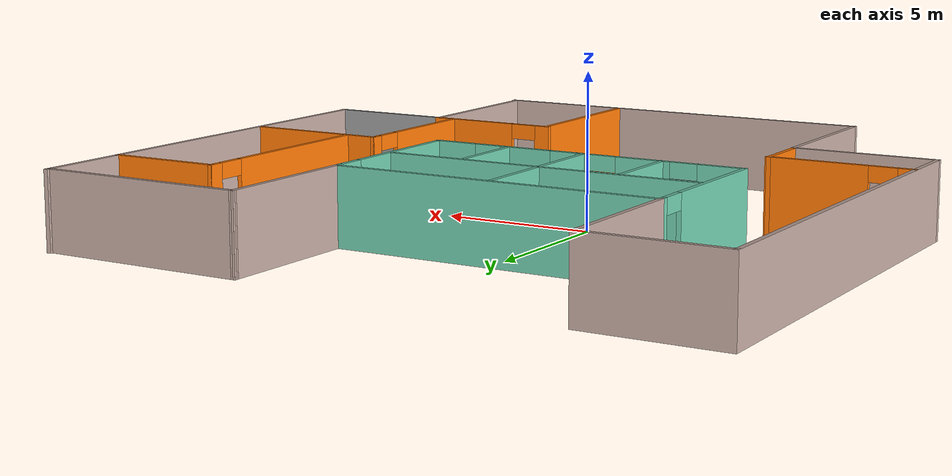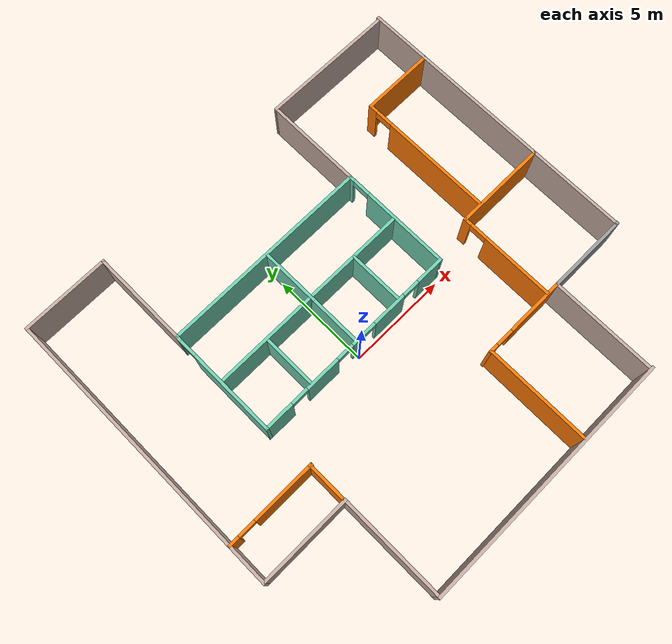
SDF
<?xml version='1.0'?>
<sdf version='1.6'>
  <model name='Building'>
    <pose frame=''>1.22152 0.635857 0 0 -0 0</pose>
    <link name='Wall_35'>
      <collision name='Wall_35_Collision'>
        <geometry>
          <box>
            <size>4.5 0.15 2.5</size>
          </box>
        </geometry>
        <pose frame=''>0 0 1.25 0 -0 0</pose>
      </collision>
      <visual name='Wall_35_Visual'>
        <pose frame=''>0 0 1.25 0 -0 0</pose>
        <geometry>
          <box>
            <size>4.5 0.15 2.5</size>
          </box>
        </geometry>
        <material>
          <script>
            <uri>file://media/materials/scripts/gazebo.material</uri>
            <name>Gazebo/Grey</name>
          </script>
          <ambient>0.760784 0.662745 0.627451 1</ambient>
        </material>
        <meta>
          <layer>0</layer>
        </meta>
      </visual>
      <pose frame=''>-8.725 10.0804 0 0 -0 0</pose>
    </link>
    <link name='Wall_36'>
      <collision name='Wall_36_Collision'>
        <geometry>
          <box>
            <size>5 0.15 2.5</size>
          </box>
        </geometry>
        <pose frame=''>0 0 1.25 0 -0 0</pose>
      </collision>
      <visual name='Wall_36_Visual'>
        <pose frame=''>0 0 1.25 0 -0 0</pose>
        <geometry>
          <box>
            <size>5 0.15 2.5</size>
          </box>
        </geometry>
        <material>
          <script>
            <uri>file://media/materials/scripts/gazebo.material</uri>
            <name>Gazebo/Grey</name>
          </script>
          <ambient>0.760784 0.662745 0.627451 1</ambient>
        </material>
        <meta>
          <layer>0</layer>
        </meta>
      </visual>
      <pose frame=''>-6.55 7.65538 0 0 0 -1.5708</pose>
    </link>
    <link name='Wall_37'>
      <collision name='Wall_37_Collision'>
        <geometry>
          <box>
            <size>10.75 0.15 2.5</size>
          </box>
        </geometry>
        <pose frame=''>0 0 1.25 0 -0 0</pose>
      </collision>
      <visual name='Wall_37_Visual'>
        <pose frame=''>0 0 1.25 0 -0 0</pose>
        <geometry>
          <box>
            <size>10.75 0.15 2.5</size>
          </box>
        </geometry>
        <material>
          <script>
            <uri>file://media/materials/scripts/gazebo.material</uri>
            <name>Gazebo/Grey</name>
          </script>
          <ambient>0.435294 0.796078 0.67451 1</ambient>
        </material>
        <meta>
          <layer>0</layer>
        </meta>
      </visual>
      <pose frame=''>-1.25 5.23038 0 0 -0 0</pose>
    </link>
    <link name='Wall_38'>
      <collision name='Wall_38_Collision'>
        <geometry>
          <box>
            <size>5 0.15 2.5</size>
          </box>
        </geometry>
        <pose frame=''>0 0 1.25 0 -0 0</pose>
      </collision>
      <visual name='Wall_38_Visual'>
        <pose frame=''>0 0 1.25 0 -0 0</pose>
        <geometry>
          <box>
            <size>5 0.15 2.5</size>
          </box>
        </geometry>
        <material>
          <script>
            <uri>file://media/materials/scripts/gazebo.material</uri>
            <name>Gazebo/Grey</name>
          </script>
          <ambient>0.760784 0.662745 0.627451 1</ambient>
        </material>
        <meta>
          <layer>0</layer>
        </meta>
      </visual>
      <pose frame=''>4.05 7.65538 0 0 -0 1.5708</pose>
    </link>
    <link name='Wall_39'>
      <collision name='Wall_39_Collision'>
        <geometry>
          <box>
            <size>6.98446 0.15 2.5</size>
          </box>
        </geometry>
        <pose frame=''>0 0 1.25 0 -0 0</pose>
      </collision>
      <visual name='Wall_39_Visual'>
        <pose frame=''>0 0 1.25 0 -0 0</pose>
        <geometry>
          <box>
            <size>6.98446 0.15 2.5</size>
          </box>
        </geometry>
        <material>
          <script>
            <uri>file://media/materials/scripts/gazebo.material</uri>
            <name>Gazebo/Grey</name>
          </script>
          <ambient>0.760784 0.662745 0.627451 1</ambient>
        </material>
        <meta>
          <layer>0</layer>
        </meta>
      </visual>
      <pose frame=''>7.46718 10.0598 0 0 0 -0.006031</pose>
    </link>
    <link name='Wall_40'>
      <collision name='Wall_40_Collision'>
        <geometry>
          <box>
            <size>15 0.15 2.5</size>
          </box>
        </geometry>
        <pose frame=''>0 0 1.25 0 -0 0</pose>
      </collision>
      <visual name='Wall_40_Visual'>
        <pose frame=''>0 0 1.25 0 -0 0</pose>
        <geometry>
          <box>
            <size>15 0.15 2.5</size>
          </box>
        </geometry>
        <material>
          <script>
            <uri>file://media/materials/scripts/gazebo.material</uri>
            <name>Gazebo/Grey</name>
          </script>
          <ambient>0.760784 0.662745 0.627451 1</ambient>
        </material>
        <meta>
          <layer>0</layer>
        </meta>
      </visual>
      <pose frame=''>10.8843 2.69462 0 0 0 -1.5708</pose>
    </link>
    <link name='Wall_42'>
      <collision name='Wall_42_Collision'>
        <geometry>
          <box>
            <size>5.5 0.15 2.5</size>
          </box>
        </geometry>
        <pose frame=''>0 0 1.25 0 -0 0</pose>
      </collision>
      <visual name='Wall_42_Visual'>
        <pose frame=''>0 0 1.25 0 -0 0</pose>
        <geometry>
          <box>
            <size>5.5 0.15 2.5</size>
          </box>
        </geometry>
        <material>
          <script>
            <uri>file://media/materials/scripts/gazebo.material</uri>
            <name>Gazebo/Grey</name>
          </script>
          <ambient>0.760784 0.662745 0.627451 1</ambient>
        </material>
        <meta>
          <layer>0</layer>
        </meta>
      </visual>
      <pose frame=''>6.84725 -7.44462 0 0 0 -1.5708</pose>
    </link>
    <link name='Wall_43'>
      <collision name='Wall_43_Collision'>
        <geometry>
          <box>
            <size>13.368 0.15 2.5</size>
          </box>
        </geometry>
        <pose frame=''>0 0 1.25 0 -0 0</pose>
      </collision>
      <visual name='Wall_43_Visual'>
        <pose frame=''>0 0 1.25 0 -0 0</pose>
        <geometry>
          <box>
            <size>13.368 0.15 2.5</size>
          </box>
        </geometry>
        <material>
          <script>
            <uri>file://media/materials/scripts/gazebo.material</uri>
            <name>Gazebo/Grey</name>
          </script>
          <ambient>0.760784 0.662745 0.627451 1</ambient>
        </material>
        <meta>
          <layer>0</layer>
        </meta>
      </visual>
      <pose frame=''>0.309006 -10.1196 0 0 -0 3.14159</pose>
    </link>
    <link name='Wall_44'>
      <collision name='Wall_44_Collision'>
        <geometry>
          <box>
            <size>5.5 0.15 2.5</size>
          </box>
        </geometry>
        <pose frame=''>0 0 1.25 0 -0 0</pose>
      </collision>
      <visual name='Wall_44_Visual'>
        <pose frame=''>0 0 1.25 0 -0 0</pose>
        <geometry>
          <box>
            <size>5.5 0.15 2.5</size>
          </box>
        </geometry>
        <material>
          <script>
            <uri>file://media/materials/scripts/gazebo.material</uri>
            <name>Gazebo/Grey</name>
          </script>
          <ambient>0.760784 0.662745 0.627451 1</ambient>
        </material>
        <meta>
          <layer>0</layer>
        </meta>
      </visual>
      <pose frame=''>-6.3 -7.44462 0 0 -0 1.5708</pose>
    </link>
    <link name='Wall_45'>
      <collision name='Wall_45_Collision'>
        <geometry>
          <box>
            <size>4.75 0.15 2.5</size>
          </box>
        </geometry>
        <pose frame=''>0 0 1.25 0 -0 0</pose>
      </collision>
      <visual name='Wall_45_Visual'>
        <pose frame=''>0 0 1.25 0 -0 0</pose>
        <geometry>
          <box>
            <size>4.75 0.15 2.5</size>
          </box>
        </geometry>
        <material>
          <script>
            <uri>file://media/materials/scripts/gazebo.material</uri>
            <name>Gazebo/Grey</name>
          </script>
          <ambient>0.760784 0.662745 0.627451 1</ambient>
        </material>
        <meta>
          <layer>0</layer>
        </meta>
      </visual>
      <pose frame=''>-8.6 -4.76962 0 0 -0 3.14159</pose>
    </link>
    <link name='Wall_46'>
      <collision name='Wall_46_Collision'>
        <geometry>
          <box>
            <size>15 0.15 2.5</size>
          </box>
        </geometry>
        <pose frame=''>0 0 1.25 0 -0 0</pose>
      </collision>
      <visual name='Wall_46_Visual'>
        <pose frame=''>0 0 1.25 0 -0 0</pose>
        <geometry>
          <box>
            <size>15 0.15 2.5</size>
          </box>
        </geometry>
        <material>
          <script>
            <uri>file://media/materials/scripts/gazebo.material</uri>
            <name>Gazebo/Grey</name>
          </script>
          <ambient>0.760784 0.662745 0.627451 1</ambient>
        </material>
        <meta>
          <layer>0</layer>
        </meta>
      </visual>
      <pose frame=''>-10.9 2.65538 0 0 -0 1.5708</pose>
    </link>
    <link name='Wall_48'>
      <pose frame=''>-6.55 2.43038 0 0 0 -1.5708</pose>
      <visual name='Wall_48_Visual_0'>
        <pose frame=''>-2.70872 0 1.25 0 -0 0</pose>
        <geometry>
          <box>
            <size>0.332563 0.15 2.5</size>
          </box>
        </geometry>
        <material>
          <script>
            <uri>file://media/materials/scripts/gazebo.material</uri>
            <name>Gazebo/Grey</name>
          </script>
          <ambient>0.435294 0.796078 0.67451 1</ambient>
        </material>
        <meta>
          <layer>0</layer>
        </meta>
      </visual>
      <collision name='Wall_48_Collision_0'>
        <geometry>
          <box>
            <size>0.332563 0.15 2.5</size>
          </box>
        </geometry>
        <pose frame=''>-2.70872 0 1.25 0 -0 0</pose>
      </collision>
      <visual name='Wall_48_Visual_1'>
        <pose frame=''>0.616281 0 1.25 0 -0 0</pose>
        <geometry>
          <box>
            <size>4.51744 0.15 2.5</size>
          </box>
        </geometry>
        <material>
          <script>
            <uri>file://media/materials/scripts/gazebo.material</uri>
            <name>Gazebo/Grey</name>
          </script>
          <ambient>0.435294 0.796078 0.67451 1</ambient>
        </material>
        <meta>
          <layer>0</layer>
        </meta>
      </visual>
      <collision name='Wall_48_Collision_1'>
        <geometry>
          <box>
            <size>4.51744 0.15 2.5</size>
          </box>
        </geometry>
        <pose frame=''>0.616281 0 1.25 0 -0 0</pose>
      </collision>
      <visual name='Wall_48_Visual_2'>
        <pose frame=''>-2.09244 0 2.25 0 -0 0</pose>
        <geometry>
          <box>
            <size>0.9 0.15 0.5</size>
          </box>
        </geometry>
        <material>
          <script>
            <uri>file://media/materials/scripts/gazebo.material</uri>
            <name>Gazebo/Grey</name>
          </script>
          <ambient>0.435294 0.796078 0.67451 1</ambient>
        </material>
        <meta>
          <layer>0</layer>
        </meta>
      </visual>
      <collision name='Wall_48_Collision_2'>
        <geometry>
          <box>
            <size>0.9 0.15 0.5</size>
          </box>
        </geometry>
        <pose frame=''>-2.09244 0 2.25 0 -0 0</pose>
      </collision>
    </link>
    <link name='Wall_49'>
      <pose frame=''>-1.25 -0.36962 0 0 -0 0</pose>
      <visual name='Wall_49_Visual_0'>
        <pose frame=''>-4.59292 0 1.25 0 -0 0</pose>
        <geometry>
          <box>
            <size>1.56416 0.15 2.5</size>
          </box>
        </geometry>
        <material>
          <script>
            <uri>file://media/materials/scripts/gazebo.material</uri>
            <name>Gazebo/Grey</name>
          </script>
          <ambient>0.435294 0.796078 0.67451 1</ambient>
        </material>
        <meta>
          <layer>0</layer>
        </meta>
      </visual>
      <collision name='Wall_49_Collision_0'>
        <geometry>
          <box>
            <size>1.56416 0.15 2.5</size>
          </box>
        </geometry>
        <pose frame=''>-4.59292 0 1.25 0 -0 0</pose>
      </collision>
      <visual name='Wall_49_Visual_1'>
        <pose frame=''>-2.00006 0 1.25 0 -0 0</pose>
        <geometry>
          <box>
            <size>1.82155 0.15 2.5</size>
          </box>
        </geometry>
        <material>
          <script>
            <uri>file://media/materials/scripts/gazebo.material</uri>
            <name>Gazebo/Grey</name>
          </script>
          <ambient>0.435294 0.796078 0.67451 1</ambient>
        </material>
        <meta>
          <layer>0</layer>
        </meta>
      </visual>
      <collision name='Wall_49_Collision_1'>
        <geometry>
          <box>
            <size>1.82155 0.15 2.5</size>
          </box>
        </geometry>
        <pose frame=''>-2.00006 0 1.25 0 -0 0</pose>
      </collision>
      <visual name='Wall_49_Visual_2'>
        <pose frame=''>0.046812 0 1.25 0 -0 0</pose>
        <geometry>
          <box>
            <size>0.472208 0.15 2.5</size>
          </box>
        </geometry>
        <material>
          <script>
            <uri>file://media/materials/scripts/gazebo.material</uri>
            <name>Gazebo/Grey</name>
          </script>
          <ambient>0.435294 0.796078 0.67451 1</ambient>
        </material>
        <meta>
          <layer>0</layer>
        </meta>
      </visual>
      <collision name='Wall_49_Collision_2'>
        <geometry>
          <box>
            <size>0.472208 0.15 2.5</size>
          </box>
        </geometry>
        <pose frame=''>0.046812 0 1.25 0 -0 0</pose>
      </collision>
      <visual name='Wall_49_Visual_3'>
        <pose frame=''>2.08225 0 1.25 0 -0 0</pose>
        <geometry>
          <box>
            <size>1.79868 0.15 2.5</size>
          </box>
        </geometry>
        <material>
          <script>
            <uri>file://media/materials/scripts/gazebo.material</uri>
            <name>Gazebo/Grey</name>
          </script>
          <ambient>0.435294 0.796078 0.67451 1</ambient>
        </material>
        <meta>
          <layer>0</layer>
        </meta>
      </visual>
      <collision name='Wall_49_Collision_3'>
        <geometry>
          <box>
            <size>1.79868 0.15 2.5</size>
          </box>
        </geometry>
        <pose frame=''>2.08225 0 1.25 0 -0 0</pose>
      </collision>
      <visual name='Wall_49_Visual_4'>
        <pose frame=''>4.6283 0 1.25 0 -0 0</pose>
        <geometry>
          <box>
            <size>1.49341 0.15 2.5</size>
          </box>
        </geometry>
        <material>
          <script>
            <uri>file://media/materials/scripts/gazebo.material</uri>
            <name>Gazebo/Grey</name>
          </script>
          <ambient>0.435294 0.796078 0.67451 1</ambient>
        </material>
        <meta>
          <layer>0</layer>
        </meta>
      </visual>
      <collision name='Wall_49_Collision_4'>
        <geometry>
          <box>
            <size>1.49341 0.15 2.5</size>
          </box>
        </geometry>
        <pose frame=''>4.6283 0 1.25 0 -0 0</pose>
      </collision>
      <visual name='Wall_49_Visual_5'>
        <pose frame=''>-3.36084 0 2.25 0 -0 0</pose>
        <geometry>
          <box>
            <size>0.9 0.15 0.5</size>
          </box>
        </geometry>
        <material>
          <script>
            <uri>file://media/materials/scripts/gazebo.material</uri>
            <name>Gazebo/Grey</name>
          </script>
          <ambient>0.435294 0.796078 0.67451 1</ambient>
        </material>
        <meta>
          <layer>0</layer>
        </meta>
      </visual>
      <collision name='Wall_49_Collision_5'>
        <geometry>
          <box>
            <size>0.9 0.15 0.5</size>
          </box>
        </geometry>
        <pose frame=''>-3.36084 0 2.25 0 -0 0</pose>
      </collision>
      <visual name='Wall_49_Visual_6'>
        <pose frame=''>-0.639292 0 2.25 0 -0 0</pose>
        <geometry>
          <box>
            <size>0.9 0.15 0.5</size>
          </box>
        </geometry>
        <material>
          <script>
            <uri>file://media/materials/scripts/gazebo.material</uri>
            <name>Gazebo/Grey</name>
          </script>
          <ambient>0.435294 0.796078 0.67451 1</ambient>
        </material>
        <meta>
          <layer>0</layer>
        </meta>
      </visual>
      <collision name='Wall_49_Collision_6'>
        <geometry>
          <box>
            <size>0.9 0.15 0.5</size>
          </box>
        </geometry>
        <pose frame=''>-0.639292 0 2.25 0 -0 0</pose>
      </collision>
      <visual name='Wall_49_Visual_7'>
        <pose frame=''>0.732916 0 2.25 0 -0 0</pose>
        <geometry>
          <box>
            <size>0.9 0.15 0.5</size>
          </box>
        </geometry>
        <material>
          <script>
            <uri>file://media/materials/scripts/gazebo.material</uri>
            <name>Gazebo/Grey</name>
          </script>
          <ambient>0.435294 0.796078 0.67451 1</ambient>
        </material>
        <meta>
          <layer>0</layer>
        </meta>
      </visual>
      <collision name='Wall_49_Collision_7'>
        <geometry>
          <box>
            <size>0.9 0.15 0.5</size>
          </box>
        </geometry>
        <pose frame=''>0.732916 0 2.25 0 -0 0</pose>
      </collision>
      <visual name='Wall_49_Visual_8'>
        <pose frame=''>3.43159 0 2.25 0 -0 0</pose>
        <geometry>
          <box>
            <size>0.9 0.15 0.5</size>
          </box>
        </geometry>
        <material>
          <script>
            <uri>file://media/materials/scripts/gazebo.material</uri>
            <name>Gazebo/Grey</name>
          </script>
          <ambient>0.435294 0.796078 0.67451 1</ambient>
        </material>
        <meta>
          <layer>0</layer>
        </meta>
      </visual>
      <collision name='Wall_49_Collision_8'>
        <geometry>
          <box>
            <size>0.9 0.15 0.5</size>
          </box>
        </geometry>
        <pose frame=''>3.43159 0 2.25 0 -0 0</pose>
      </collision>
    </link>
    <link name='Wall_50'>
      <pose frame=''>4.05 2.43038 0 0 -0 1.5708</pose>
      <visual name='Wall_50_Visual_0'>
        <pose frame=''>-0.616281 0 1.25 0 -0 0</pose>
        <geometry>
          <box>
            <size>4.51744 0.15 2.5</size>
          </box>
        </geometry>
        <material>
          <script>
            <uri>file://media/materials/scripts/gazebo.material</uri>
            <name>Gazebo/Grey</name>
          </script>
          <ambient>0.435294 0.796078 0.67451 1</ambient>
        </material>
        <meta>
          <layer>0</layer>
        </meta>
      </visual>
      <collision name='Wall_50_Collision_0'>
        <geometry>
          <box>
            <size>4.51744 0.15 2.5</size>
          </box>
        </geometry>
        <pose frame=''>-0.616281 0 1.25 0 -0 0</pose>
      </collision>
      <visual name='Wall_50_Visual_1'>
        <pose frame=''>2.70872 0 1.25 0 -0 0</pose>
        <geometry>
          <box>
            <size>0.332563 0.15 2.5</size>
          </box>
        </geometry>
        <material>
          <script>
            <uri>file://media/materials/scripts/gazebo.material</uri>
            <name>Gazebo/Grey</name>
          </script>
          <ambient>0.435294 0.796078 0.67451 1</ambient>
        </material>
        <meta>
          <layer>0</layer>
        </meta>
      </visual>
      <collision name='Wall_50_Collision_1'>
        <geometry>
          <box>
            <size>0.332563 0.15 2.5</size>
          </box>
        </geometry>
        <pose frame=''>2.70872 0 1.25 0 -0 0</pose>
      </collision>
      <visual name='Wall_50_Visual_2'>
        <pose frame=''>2.09244 0 2.25 0 -0 0</pose>
        <geometry>
          <box>
            <size>0.9 0.15 0.5</size>
          </box>
        </geometry>
        <material>
          <script>
            <uri>file://media/materials/scripts/gazebo.material</uri>
            <name>Gazebo/Grey</name>
          </script>
          <ambient>0.435294 0.796078 0.67451 1</ambient>
        </material>
        <meta>
          <layer>0</layer>
        </meta>
      </visual>
      <collision name='Wall_50_Collision_2'>
        <geometry>
          <box>
            <size>0.9 0.15 0.5</size>
          </box>
        </geometry>
        <pose frame=''>2.09244 0 2.25 0 -0 0</pose>
      </collision>
    </link>
    <link name='Wall_52'>
      <collision name='Wall_52_Collision'>
        <geometry>
          <box>
            <size>10.5 0.15 2.5</size>
          </box>
        </geometry>
        <pose frame=''>0 0 1.25 0 -0 0</pose>
      </collision>
      <visual name='Wall_52_Visual'>
        <pose frame=''>0 0 1.25 0 -0 0</pose>
        <geometry>
          <box>
            <size>10.5 0.15 2.5</size>
          </box>
        </geometry>
        <material>
          <script>
            <uri>file://media/materials/scripts/gazebo.material</uri>
            <name>Gazebo/Grey</name>
          </script>
          <ambient>0.435294 0.796078 0.67451 1</ambient>
        </material>
        <meta>
          <layer>0</layer>
        </meta>
      </visual>
      <pose frame=''>-1.24961 2.43154 0 0 -0 0</pose>
    </link>
    <link name='Wall_56'>
      <collision name='Wall_56_Collision'>
        <geometry>
          <box>
            <size>2.75 0.15 2.5</size>
          </box>
        </geometry>
        <pose frame=''>0 0 1.25 0 -0 0</pose>
      </collision>
      <visual name='Wall_56_Visual'>
        <pose frame=''>0 0 1.25 0 -0 0</pose>
        <geometry>
          <box>
            <size>2.75 0.15 2.5</size>
          </box>
        </geometry>
        <material>
          <script>
            <uri>file://media/materials/scripts/gazebo.material</uri>
            <name>Gazebo/Grey</name>
          </script>
          <ambient>0.435294 0.796078 0.67451 1</ambient>
        </material>
        <meta>
          <layer>0</layer>
        </meta>
      </visual>
      <pose frame=''>-1.20548 0.975756 0 0 0 -1.5708</pose>
    </link>
    <link name='Wall_59'>
      <collision name='Wall_59_Collision'>
        <geometry>
          <box>
            <size>2.75 0.15 2.5</size>
          </box>
        </geometry>
        <pose frame=''>0 0 1.25 0 -0 0</pose>
      </collision>
      <visual name='Wall_59_Visual'>
        <pose frame=''>0 0 1.25 0 -0 0</pose>
        <geometry>
          <box>
            <size>2.75 0.15 2.5</size>
          </box>
        </geometry>
        <material>
          <script>
            <uri>file://media/materials/scripts/gazebo.material</uri>
            <name>Gazebo/Grey</name>
          </script>
          <ambient>0.435294 0.796078 0.67451 1</ambient>
        </material>
        <meta>
          <layer>0</layer>
        </meta>
      </visual>
      <pose frame=''>-3.87235 1.03442 0 0 0 -1.5708</pose>
    </link>
    <link name='Wall_61'>
      <collision name='Wall_61_Collision'>
        <geometry>
          <box>
            <size>2.75 0.15 2.5</size>
          </box>
        </geometry>
        <pose frame=''>0 0 1.25 0 -0 0</pose>
      </collision>
      <visual name='Wall_61_Visual'>
        <pose frame=''>0 0 1.25 0 -0 0</pose>
        <geometry>
          <box>
            <size>2.75 0.15 2.5</size>
          </box>
        </geometry>
        <material>
          <script>
            <uri>file://media/materials/scripts/gazebo.material</uri>
            <name>Gazebo/Grey</name>
          </script>
          <ambient>0.435294 0.796078 0.67451 1</ambient>
        </material>
        <meta>
          <layer>0</layer>
        </meta>
      </visual>
      <pose frame=''>1.44292 1.07244 0 0 0 -1.5708</pose>
    </link>
    <link name='Wall_63'>
      <collision name='Wall_63_Collision'>
        <geometry>
          <box>
            <size>3 0.15 2.5</size>
          </box>
        </geometry>
        <pose frame=''>0 0 1.25 0 -0 0</pose>
      </collision>
      <visual name='Wall_63_Visual'>
        <pose frame=''>0 0 1.25 0 -0 0</pose>
        <geometry>
          <box>
            <size>3 0.15 2.5</size>
          </box>
        </geometry>
        <material>
          <script>
            <uri>file://media/materials/scripts/gazebo.material</uri>
            <name>Gazebo/Grey</name>
          </script>
          <ambient>0.435294 0.796078 0.67451 1</ambient>
        </material>
        <meta>
          <layer>0</layer>
        </meta>
      </visual>
      <pose frame=''>-1.20548 3.70076 0 0 -0 1.5708</pose>
    </link>
    <link name='Wall_65'>
      <collision name='Wall_65_Collision'>
        <geometry>
          <box>
            <size>4.13199 0.15 2.5</size>
          </box>
        </geometry>
        <pose frame=''>0 0 1.25 0 -0 0</pose>
      </collision>
      <visual name='Wall_65_Visual'>
        <pose frame=''>0 0 1.25 0 -0 0</pose>
        <geometry>
          <box>
            <size>4.13199 0.15 2.5</size>
          </box>
        </geometry>
        <material>
          <script>
            <uri>file://media/materials/scripts/gazebo.material</uri>
            <name>Gazebo/Grey</name>
          </script>
          <ambient>1 1 1 1</ambient>
        </material>
        <meta>
          <layer>0</layer>
        </meta>
      </visual>
      <pose frame=''>8.90901 -4.76962 0 0 -0 0</pose>
    </link>
    <link name='Wall_67'>
      <collision name='Wall_67_Collision'>
        <geometry>
          <box>
            <size>5.40695 0.15 2.5</size>
          </box>
        </geometry>
        <pose frame=''>0 0 1.25 0 -0 0</pose>
      </collision>
      <visual name='Wall_67_Visual'>
        <pose frame=''>0 0 1.25 0 -0 0</pose>
        <geometry>
          <box>
            <size>5.40695 0.15 2.5</size>
          </box>
        </geometry>
        <material>
          <script>
            <uri>file://media/materials/scripts/gazebo.material</uri>
            <name>Gazebo/Grey</name>
          </script>
          <ambient>0.996078 0.47451 0.0196078 1</ambient>
        </material>
        <meta>
          <layer>0</layer>
        </meta>
      </visual>
      <pose frame=''>2.58189 -7.39438 0 0 -0 1.5708</pose>
    </link>
    <link name='Wall_68'>
      <pose frame=''>4.71037 -4.7659 0 0 -0 0</pose>
      <visual name='Wall_68_Visual_0'>
        <pose frame=''>-1.98659 0 1.25 0 -0 0</pose>
        <geometry>
          <box>
            <size>0.526825 0.15 2.5</size>
          </box>
        </geometry>
        <material>
          <script>
            <uri>file://media/materials/scripts/gazebo.material</uri>
            <name>Gazebo/Grey</name>
          </script>
          <ambient>0.996078 0.47451 0.0196078 1</ambient>
        </material>
        <meta>
          <layer>0</layer>
        </meta>
      </visual>
      <collision name='Wall_68_Collision_0'>
        <geometry>
          <box>
            <size>0.526825 0.15 2.5</size>
          </box>
        </geometry>
        <pose frame=''>-1.98659 0 1.25 0 -0 0</pose>
      </collision>
      <visual name='Wall_68_Visual_1'>
        <pose frame=''>0.713412 0 1.25 0 -0 0</pose>
        <geometry>
          <box>
            <size>3.07317 0.15 2.5</size>
          </box>
        </geometry>
        <material>
          <script>
            <uri>file://media/materials/scripts/gazebo.material</uri>
            <name>Gazebo/Grey</name>
          </script>
          <ambient>0.996078 0.47451 0.0196078 1</ambient>
        </material>
        <meta>
          <layer>0</layer>
        </meta>
      </visual>
      <collision name='Wall_68_Collision_1'>
        <geometry>
          <box>
            <size>3.07317 0.15 2.5</size>
          </box>
        </geometry>
        <pose frame=''>0.713412 0 1.25 0 -0 0</pose>
      </collision>
      <visual name='Wall_68_Visual_2'>
        <pose frame=''>-1.27317 0 2.25 0 -0 0</pose>
        <geometry>
          <box>
            <size>0.9 0.15 0.5</size>
          </box>
        </geometry>
        <material>
          <script>
            <uri>file://media/materials/scripts/gazebo.material</uri>
            <name>Gazebo/Grey</name>
          </script>
          <ambient>0.996078 0.47451 0.0196078 1</ambient>
        </material>
        <meta>
          <layer>0</layer>
        </meta>
      </visual>
      <collision name='Wall_68_Collision_2'>
        <geometry>
          <box>
            <size>0.9 0.15 0.5</size>
          </box>
        </geometry>
        <pose frame=''>-1.27317 0 2.25 0 -0 0</pose>
      </collision>
    </link>
    <link name='Wall_70'>
      <pose frame=''>6.24178 -2.28341 0 0 -0 1.5708</pose>
      <visual name='Wall_70_Visual_0'>
        <pose frame=''>-0.668588 0 1.25 0 -0 0</pose>
        <geometry>
          <box>
            <size>3.66283 0.15 2.5</size>
          </box>
        </geometry>
        <material>
          <script>
            <uri>file://media/materials/scripts/gazebo.material</uri>
            <name>Gazebo/Grey</name>
          </script>
          <ambient>0.996078 0.47451 0.0196078 1</ambient>
        </material>
        <meta>
          <layer>0</layer>
        </meta>
      </visual>
      <collision name='Wall_70_Collision_0'>
        <geometry>
          <box>
            <size>3.66283 0.15 2.5</size>
          </box>
        </geometry>
        <pose frame=''>-0.668588 0 1.25 0 -0 0</pose>
      </collision>
      <visual name='Wall_70_Visual_1'>
        <pose frame=''>2.28141 0 1.25 0 -0 0</pose>
        <geometry>
          <box>
            <size>0.437175 0.15 2.5</size>
          </box>
        </geometry>
        <material>
          <script>
            <uri>file://media/materials/scripts/gazebo.material</uri>
            <name>Gazebo/Grey</name>
          </script>
          <ambient>0.996078 0.47451 0.0196078 1</ambient>
        </material>
        <meta>
          <layer>0</layer>
        </meta>
      </visual>
      <collision name='Wall_70_Collision_1'>
        <geometry>
          <box>
            <size>0.437175 0.15 2.5</size>
          </box>
        </geometry>
        <pose frame=''>2.28141 0 1.25 0 -0 0</pose>
      </collision>
      <visual name='Wall_70_Visual_2'>
        <pose frame=''>1.61282 0 2.25 0 -0 0</pose>
        <geometry>
          <box>
            <size>0.9 0.15 0.5</size>
          </box>
        </geometry>
        <material>
          <script>
            <uri>file://media/materials/scripts/gazebo.material</uri>
            <name>Gazebo/Grey</name>
          </script>
          <ambient>0.996078 0.47451 0.0196078 1</ambient>
        </material>
        <meta>
          <layer>0</layer>
        </meta>
      </visual>
      <collision name='Wall_70_Collision_2'>
        <geometry>
          <box>
            <size>0.9 0.15 0.5</size>
          </box>
        </geometry>
        <pose frame=''>1.61282 0 2.25 0 -0 0</pose>
      </collision>
    </link>
    <link name='Wall_71'>
      <collision name='Wall_71_Collision'>
        <geometry>
          <box>
            <size>4.75 0.15 2.5</size>
          </box>
        </geometry>
        <pose frame=''>0 0 1.25 0 -0 0</pose>
      </collision>
      <visual name='Wall_71_Visual'>
        <pose frame=''>0 0 1.25 0 -0 0</pose>
        <geometry>
          <box>
            <size>4.75 0.15 2.5</size>
          </box>
        </geometry>
        <material>
          <script>
            <uri>file://media/materials/scripts/gazebo.material</uri>
            <name>Gazebo/Grey</name>
          </script>
          <ambient>0.996078 0.47451 0.0196078 1</ambient>
        </material>
        <meta>
          <layer>0</layer>
        </meta>
      </visual>
      <pose frame=''>8.54178 0.141587 0 0 -0 0</pose>
    </link>
    <link name='Wall_73'>
      <pose frame=''>7.26632 3.65979 0 0 -0 1.5708</pose>
      <visual name='Wall_73_Visual_0'>
        <pose frame=''>-0.697419 0 1.25 0 -0 0</pose>
        <geometry>
          <box>
            <size>5.60516 0.15 2.5</size>
          </box>
        </geometry>
        <material>
          <script>
            <uri>file://media/materials/scripts/gazebo.material</uri>
            <name>Gazebo/Grey</name>
          </script>
          <ambient>0.996078 0.47451 0.0196078 1</ambient>
        </material>
        <meta>
          <layer>0</layer>
        </meta>
      </visual>
      <collision name='Wall_73_Collision_0'>
        <geometry>
          <box>
            <size>5.60516 0.15 2.5</size>
          </box>
        </geometry>
        <pose frame=''>-0.697419 0 1.25 0 -0 0</pose>
      </collision>
      <visual name='Wall_73_Visual_1'>
        <pose frame=''>3.25258 0 1.25 0 -0 0</pose>
        <geometry>
          <box>
            <size>0.494839 0.15 2.5</size>
          </box>
        </geometry>
        <material>
          <script>
            <uri>file://media/materials/scripts/gazebo.material</uri>
            <name>Gazebo/Grey</name>
          </script>
          <ambient>0.996078 0.47451 0.0196078 1</ambient>
        </material>
        <meta>
          <layer>0</layer>
        </meta>
      </visual>
      <collision name='Wall_73_Collision_1'>
        <geometry>
          <box>
            <size>0.494839 0.15 2.5</size>
          </box>
        </geometry>
        <pose frame=''>3.25258 0 1.25 0 -0 0</pose>
      </collision>
      <visual name='Wall_73_Visual_2'>
        <pose frame=''>2.55516 0 2.25 0 -0 0</pose>
        <geometry>
          <box>
            <size>0.9 0.15 0.5</size>
          </box>
        </geometry>
        <material>
          <script>
            <uri>file://media/materials/scripts/gazebo.material</uri>
            <name>Gazebo/Grey</name>
          </script>
          <ambient>0.996078 0.47451 0.0196078 1</ambient>
        </material>
        <meta>
          <layer>0</layer>
        </meta>
      </visual>
      <collision name='Wall_73_Collision_2'>
        <geometry>
          <box>
            <size>0.9 0.15 0.5</size>
          </box>
        </geometry>
        <pose frame=''>2.55516 0 2.25 0 -0 0</pose>
      </collision>
    </link>
    <link name='Wall_74'>
      <collision name='Wall_74_Collision'>
        <geometry>
          <box>
            <size>3.75 0.15 2.5</size>
          </box>
        </geometry>
        <pose frame=''>0 0 1.25 0 -0 0</pose>
      </collision>
      <visual name='Wall_74_Visual'>
        <pose frame=''>0 0 1.25 0 -0 0</pose>
        <geometry>
          <box>
            <size>3.75 0.15 2.5</size>
          </box>
        </geometry>
        <material>
          <script>
            <uri>file://media/materials/scripts/gazebo.material</uri>
            <name>Gazebo/Grey</name>
          </script>
          <ambient>0.996078 0.47451 0.0196078 1</ambient>
        </material>
        <meta>
          <layer>0</layer>
        </meta>
      </visual>
      <pose frame=''>9.06632 7.08479 0 0 -0 0</pose>
    </link>
    <link name='Wall_78'>
      <pose frame=''>-8.57396 -2.7529 0 0 -0 0</pose>
      <visual name='Wall_78_Visual_0'>
        <pose frame=''>-2.09 0 1.25 0 -0 0</pose>
        <geometry>
          <box>
            <size>0.555478 0.15 2.5</size>
          </box>
        </geometry>
        <material>
          <script>
            <uri>file://media/materials/scripts/gazebo.material</uri>
            <name>Gazebo/Grey</name>
          </script>
          <ambient>0.996078 0.47451 0.0196078 1</ambient>
        </material>
        <meta>
          <layer>0</layer>
        </meta>
      </visual>
      <collision name='Wall_78_Collision_0'>
        <geometry>
          <box>
            <size>0.555478 0.15 2.5</size>
          </box>
        </geometry>
        <pose frame=''>-2.09 0 1.25 0 -0 0</pose>
      </collision>
      <visual name='Wall_78_Visual_1'>
        <pose frame=''>0.727739 0 1.25 0 -0 0</pose>
        <geometry>
          <box>
            <size>3.27999 0.15 2.5</size>
          </box>
        </geometry>
        <material>
          <script>
            <uri>file://media/materials/scripts/gazebo.material</uri>
            <name>Gazebo/Grey</name>
          </script>
          <ambient>0.996078 0.47451 0.0196078 1</ambient>
        </material>
        <meta>
          <layer>0</layer>
        </meta>
      </visual>
      <collision name='Wall_78_Collision_1'>
        <geometry>
          <box>
            <size>3.27999 0.15 2.5</size>
          </box>
        </geometry>
        <pose frame=''>0.727739 0 1.25 0 -0 0</pose>
      </collision>
      <visual name='Wall_78_Visual_2'>
        <pose frame=''>-1.36226 0 2.25 0 -0 0</pose>
        <geometry>
          <box>
            <size>0.9 0.15 0.5</size>
          </box>
        </geometry>
        <material>
          <script>
            <uri>file://media/materials/scripts/gazebo.material</uri>
            <name>Gazebo/Grey</name>
          </script>
          <ambient>0.996078 0.47451 0.0196078 1</ambient>
        </material>
        <meta>
          <layer>0</layer>
        </meta>
      </visual>
      <collision name='Wall_78_Collision_2'>
        <geometry>
          <box>
            <size>0.9 0.15 0.5</size>
          </box>
        </geometry>
        <pose frame=''>-1.36226 0 2.25 0 -0 0</pose>
      </collision>
    </link>
    <link name='Wall_80'>
      <collision name='Wall_80_Collision'>
        <geometry>
          <box>
            <size>2 0.15 2.5</size>
          </box>
        </geometry>
        <pose frame=''>0 0 1.25 0 -0 0</pose>
      </collision>
      <visual name='Wall_80_Visual'>
        <pose frame=''>0 0 1.25 0 -0 0</pose>
        <geometry>
          <box>
            <size>2 0.15 2.5</size>
          </box>
        </geometry>
        <material>
          <script>
            <uri>file://media/materials/scripts/gazebo.material</uri>
            <name>Gazebo/Grey</name>
          </script>
          <ambient>0.996078 0.47451 0.0196078 1</ambient>
        </material>
        <meta>
          <layer>0</layer>
        </meta>
      </visual>
      <pose frame=''>-6.32169 -3.6779 0 0 0 -1.5708</pose>
    </link>
    <static>1</static>
  </model>
</sdf>
